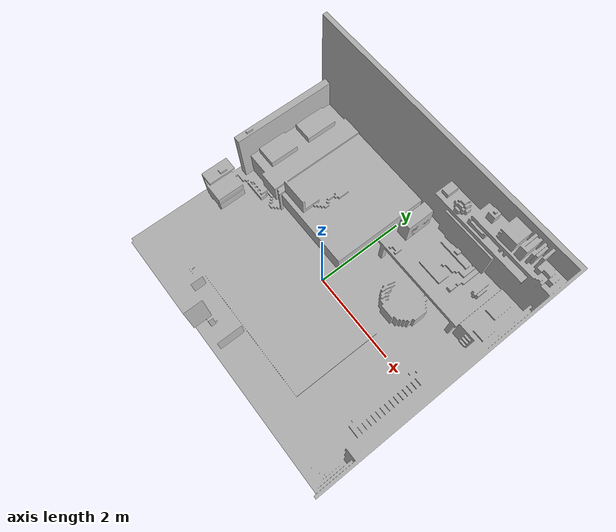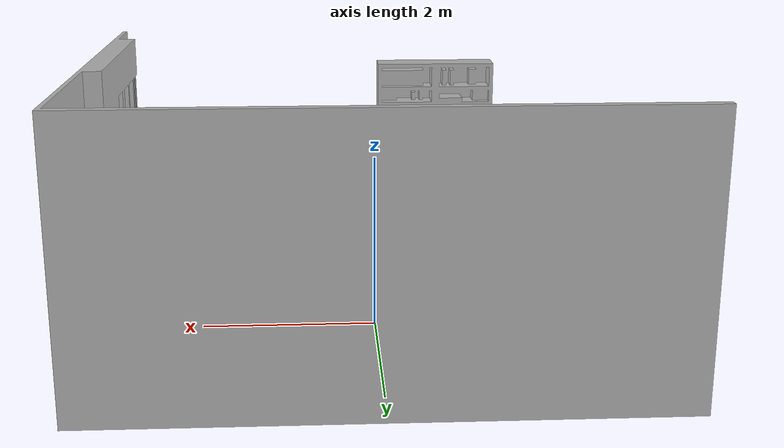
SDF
<?xml version='1.0'?>
<sdf version='1.6'>
  <model name='box_room'>
    <link name='link_1'>
         <visual name='visual'>
        <pose frame=''>0 0 0 0 -0 0</pose>
        <geometry>
          <mesh>
            <uri>model://box_room/meshes/box_room.dae</uri>
            <scale>0.05 0.05 0.05</scale>
          </mesh>
        </geometry>
        <cast_shadows>0</cast_shadows>
        <transparency>0</transparency>
      </visual>
      <collision name='collision'>
        <laser_retro>0</laser_retro>
        <max_contacts>10</max_contacts>
        <pose frame=''>0 0 0 0 -0 0</pose>
        <geometry>
          <mesh>
            <uri>model://box_room/meshes/box_room.dae</uri>
            <scale>0.05 0.05 0.05</scale>
          </mesh>
        </geometry>
     </collision>
    </link>

    <static>1</static>
    <allow_auto_disable>1</allow_auto_disable>
  </model>
</sdf>
